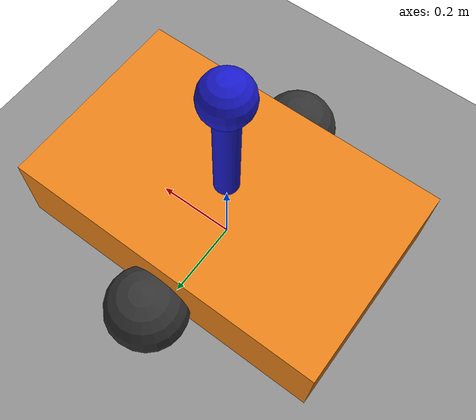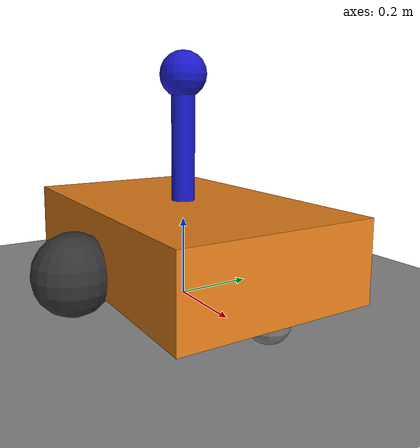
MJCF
<mujoco model="sitebot">
  <compiler angle="radian" coordinate="local"/>

  <option timestep="0.002" gravity="0 0 -9.81" integrator="implicit"/>

  <default>
    <joint armature="0.01" damping="0.1"/>
    <geom condim="3" friction="1.0 0.005 0.0001"/>
    <motor ctrllimited="true" ctrlrange="-10 10"/>
  </default>

  <asset>
    <texture type="skybox" builtin="gradient" rgb1="0.4 0.6 0.8" rgb2="0.1 0.1 0.2" width="512" height="512"/>
    <texture name="groundtex" type="2d" builtin="checker" rgb1="0.5 0.5 0.5" rgb2="0.6 0.6 0.6" width="512" height="512"/>
    <material name="groundmat" texture="groundtex" texrepeat="10 10"/>
    <material name="chassis_mat" rgba="0.9 0.5 0.1 1"/>
    <material name="wheel_mat" rgba="0.2 0.2 0.2 1"/>
    <material name="sensor_mat" rgba="0.1 0.1 0.8 1"/>
  </asset>

  <worldbody>
    <!-- Ground plane -->
    <geom name="ground" type="plane" size="50 50 0.1" material="groundmat"/>
    <light name="sun" pos="0 0 10" dir="0 0 -1" diffuse="1 1 1"/>

    <!-- SiteBot: Differential Drive Robot -->
    <body name="chassis" pos="0 0 0.15">
      <freejoint name="root"/>
      <inertial pos="0 0 0" mass="50" diaginertia="2 2 1"/>

      <!-- Main chassis body -->
      <geom name="chassis_box" type="box" size="0.4 0.25 0.1" material="chassis_mat"/>

      <!-- Sensor mast -->
      <geom name="mast" type="cylinder" pos="0 0 0.25" size="0.03 0.15" material="sensor_mat"/>
      <geom name="sensor_head" type="sphere" pos="0 0 0.42" size="0.06" material="sensor_mat"/>

      <!-- Lidar mount sites for rangefinder sensors (360 degree coverage) -->
      <site name="lidar_0" pos="0 0 0.45" euler="0 1.5708 0" size="0.01"/>
      <site name="lidar_45" pos="0 0 0.45" euler="0 1.5708 0.7854" size="0.01"/>
      <site name="lidar_90" pos="0 0 0.45" euler="0 1.5708 1.5708" size="0.01"/>
      <site name="lidar_135" pos="0 0 0.45" euler="0 1.5708 2.3562" size="0.01"/>
      <site name="lidar_180" pos="0 0 0.45" euler="0 1.5708 3.1416" size="0.01"/>
      <site name="lidar_225" pos="0 0 0.45" euler="0 1.5708 3.927" size="0.01"/>
      <site name="lidar_270" pos="0 0 0.45" euler="0 1.5708 4.7124" size="0.01"/>
      <site name="lidar_315" pos="0 0 0.45" euler="0 1.5708 5.4978" size="0.01"/>

      <!-- Left wheel (sphere for consistent friction, no edge effects) -->
      <body name="left_wheel" pos="0 0.3 -0.05">
        <joint name="left_wheel_joint" type="hinge" axis="0 1 0" limited="false"/>
        <inertial pos="0 0 0" mass="2" diaginertia="0.02 0.04 0.02"/>
        <geom name="left_wheel_geom" type="sphere" size="0.1" friction="1.5 0.005 0.0001" material="wheel_mat"/>
      </body>

      <!-- Right wheel (sphere for consistent friction, no edge effects) -->
      <body name="right_wheel" pos="0 -0.3 -0.05">
        <joint name="right_wheel_joint" type="hinge" axis="0 1 0" limited="false"/>
        <inertial pos="0 0 0" mass="2" diaginertia="0.02 0.04 0.02"/>
        <geom name="right_wheel_geom" type="sphere" size="0.1" friction="1.5 0.005 0.0001" material="wheel_mat"/>
      </body>

      <!-- Front caster (lowered to touch ground: chassis z=0.15, offset -0.10, radius 0.05 = z=0) -->
      <body name="front_caster" pos="0.35 0 -0.10">
        <inertial pos="0 0 0" mass="0.5" diaginertia="0.001 0.001 0.001"/>
        <geom name="front_caster_geom" type="sphere" size="0.05" friction="0.01 0.001 0.0001" rgba="0.5 0.5 0.5 1"/>
      </body>

      <!-- Rear caster (lowered to touch ground) -->
      <body name="rear_caster" pos="-0.35 0 -0.10">
        <inertial pos="0 0 0" mass="0.5" diaginertia="0.001 0.001 0.001"/>
        <geom name="rear_caster_geom" type="sphere" size="0.05" friction="0.01 0.001 0.0001" rgba="0.5 0.5 0.5 1"/>
      </body>
    </body>
  </worldbody>

  <actuator>
    <!-- Motor actuators with high gear ratio for strong velocity tracking -->
    <!-- gear=500 amplifies torque, ctrlrange allows large control signals -->
    <motor name="left_motor" joint="left_wheel_joint" gear="500" ctrllimited="true" ctrlrange="-1000 1000"/>
    <motor name="right_motor" joint="right_wheel_joint" gear="500" ctrllimited="true" ctrlrange="-1000 1000"/>
  </actuator>

  <sensor>
    <!-- Chassis state sensors -->
    <framepos name="chassis_pos" objtype="body" objname="chassis"/>
    <framequat name="chassis_quat" objtype="body" objname="chassis"/>
    <framelinvel name="chassis_vel" objtype="body" objname="chassis"/>
    <frameangvel name="chassis_angvel" objtype="body" objname="chassis"/>
    <jointvel name="left_wheel_vel" joint="left_wheel_joint"/>
    <jointvel name="right_wheel_vel" joint="right_wheel_joint"/>

    <!-- Lidar rangefinder sensors (8 beams at 45 degree intervals) -->
    <rangefinder name="range_0" site="lidar_0"/>
    <rangefinder name="range_45" site="lidar_45"/>
    <rangefinder name="range_90" site="lidar_90"/>
    <rangefinder name="range_135" site="lidar_135"/>
    <rangefinder name="range_180" site="lidar_180"/>
    <rangefinder name="range_225" site="lidar_225"/>
    <rangefinder name="range_270" site="lidar_270"/>
    <rangefinder name="range_315" site="lidar_315"/>
  </sensor>
</mujoco>
